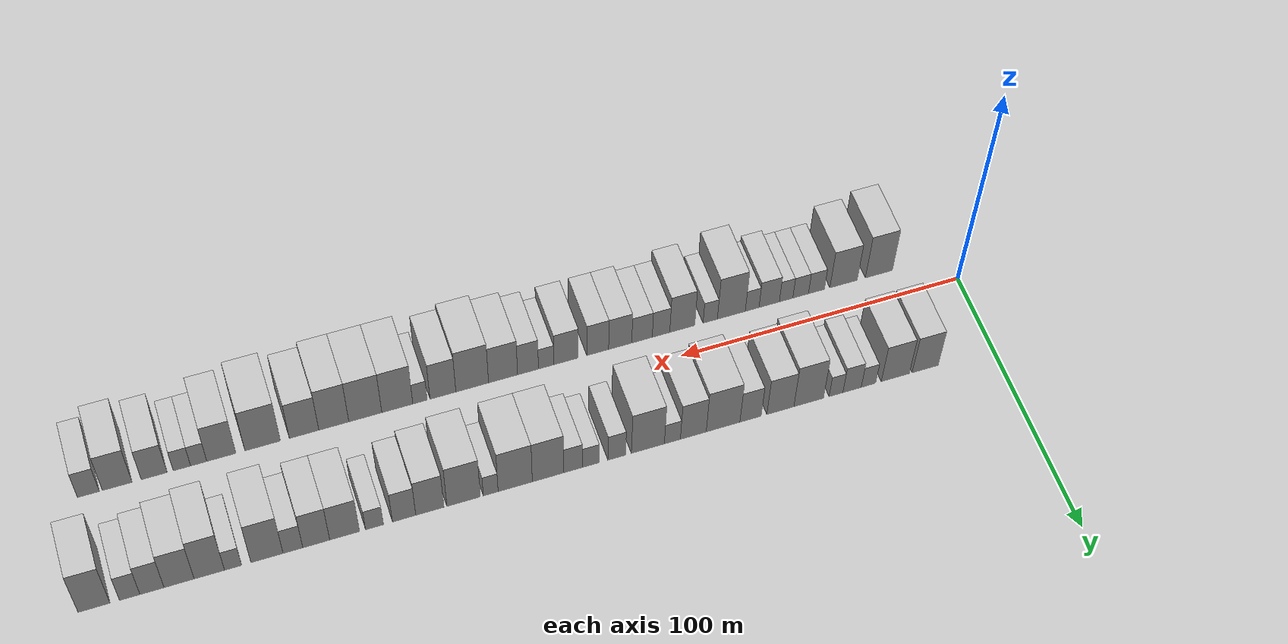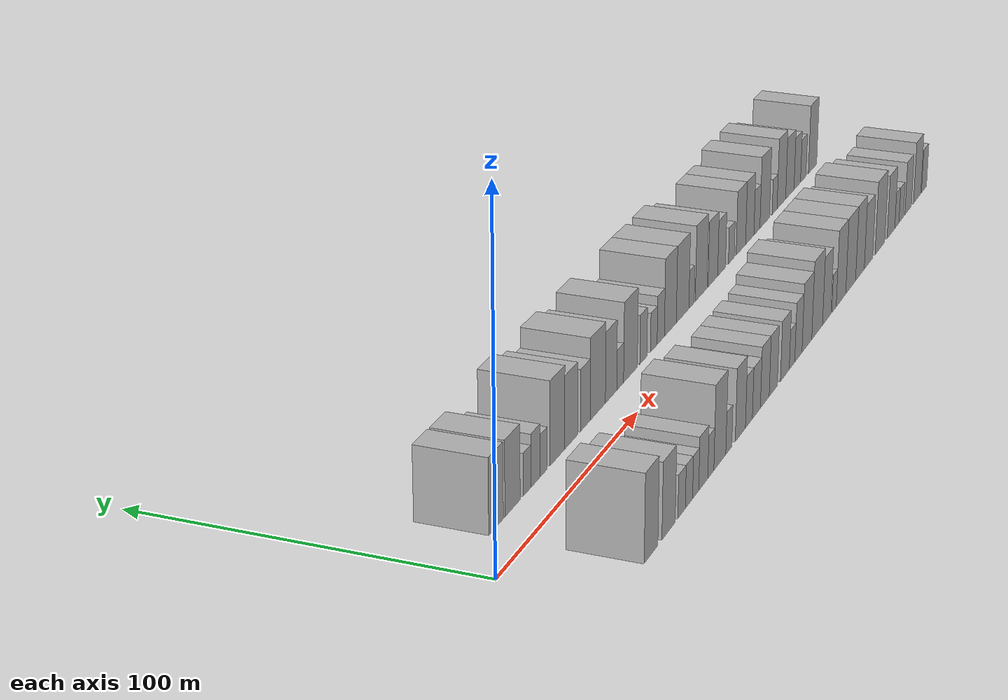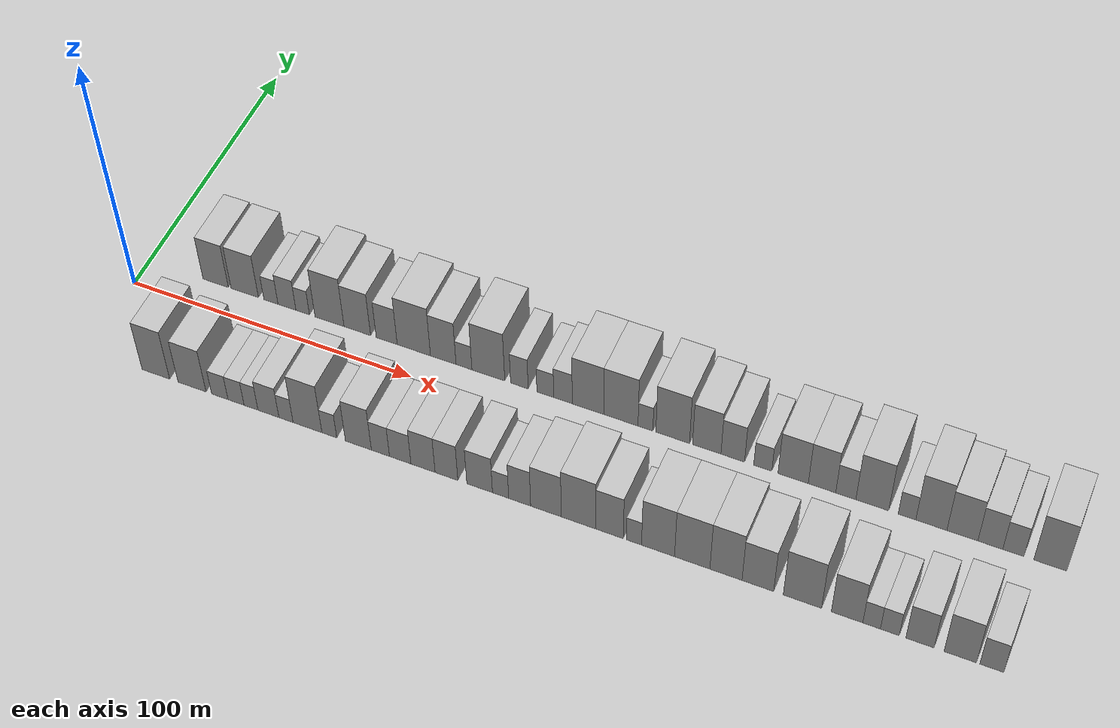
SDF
<sdf version="1.6">
 <world name="default">
  <scene>
   <sky><clouds><speed>12</speed></clouds></sky>
   <ambient>0.4 0.4 0.4 1</ambient>
   <background>0.7 0.7 0.7 1</background>
   <shadows>1</shadows>
  </scene>
  <gravity>0 0 -9.8066</gravity>
  <magnetic_field>6e-06 2.3e-05 -4.2e-05</magnetic_field>
  <physics default="0" name="default_physics" type="ode">
   <ode>
    <solver>
     <type>quick</type>
     <iters>10</iters>
     <sor>1.0</sor>
     <use_dynamic_moi_rescaling>0</use_dynamic_moi_rescaling>
    </solver>
    <constraints>
     <cfm>0</cfm>
     <erp>0.2</erp>
     <contact_max_correcting_vel>100</contact_max_correcting_vel>
     <contact_surface_layer>0.001</contact_surface_layer>
    </constraints>
   </ode>
   <max_step_size>0.004</max_step_size>
   <real_time_factor>1</real_time_factor>
   <real_time_update_rate>250</real_time_update_rate>
  </physics>
  <light name="sun" type="directional">
   <pose>0 0 10 0 0 0</pose>
   <diffuse>0.8 0.8 0.8 1</diffuse>
   <specular>0.2 0.2 0.2 1</specular>
   <attenuation>
    <range>1000</range>
    <constant>0.9</constant>
    <linear>0.01</linear>
    <quadratic>0.001</quadratic>
   </attenuation>
   <direction>-0.5 0.1 -0.9</direction>
  </light>
  <model name="building_1">
   <static>1</static>
   <pose>24.6834 20.0000 0 0.000000 0.000000 1.570796</pose>
   <link name="link">
    <pose>0 0 10.50 0 0 0</pose>
    <collision name="collision"><geometry><box><size>20.0000 9.3668 21.0000</size></box></geometry></collision>
    <visual name="visual">
     <cast_shadows>0</cast_shadows>
     <geometry><box><size>20.0000 9.3668 21.0000</size></box></geometry>
     <material>
      <script>
       <uri>model://HANNAS_wall/materials/scripts</uri>
       <uri>model://HANNAS_wall/materials/textures</uri>
       <name>vrc/HANNAS_wall</name>
      </script>
     </material>
    </visual>
   </link>
  </model>
  <model name="building_2">
   <static>1</static>
   <pose>35.3966 20.0000 0 0.000000 0.000000 1.570796</pose>
   <link name="link">
    <pose>0 0 10.50 0 0 0</pose>
    <collision name="collision"><geometry><box><size>20.0000 10.0596 21.0000</size></box></geometry></collision>
    <visual name="visual">
     <cast_shadows>0</cast_shadows>
     <geometry><box><size>20.0000 10.0596 21.0000</size></box></geometry>
     <material>
      <script>
       <uri>model://HANNAS_wall/materials/scripts</uri>
       <uri>model://HANNAS_wall/materials/textures</uri>
       <name>vrc/HANNAS_wall</name>
      </script>
     </material>
    </visual>
   </link>
  </model>
  <model name="building_3">
   <static>1</static>
   <pose>45.0067 20.0000 0 0.000000 0.000000 1.570796</pose>
   <link name="link">
    <pose>0 0 6.00 0 0 0</pose>
    <collision name="collision"><geometry><box><size>20.0000 5.1606 12.0000</size></box></geometry></collision>
    <visual name="visual">
     <cast_shadows>0</cast_shadows>
     <geometry><box><size>20.0000 5.1606 12.0000</size></box></geometry>
     <material>
      <script>
       <uri>model://HANNAS_wall/materials/scripts</uri>
       <uri>model://HANNAS_wall/materials/textures</uri>
       <name>vrc/HANNAS_wall</name>
      </script>
     </material>
    </visual>
   </link>
  </model>
  <model name="building_4">
   <static>1</static>
   <pose>50.8399 20.0000 0 0.000000 0.000000 1.570796</pose>
   <link name="link">
    <pose>0 0 7.50 0 0 0</pose>
    <collision name="collision"><geometry><box><size>20.0000 6.5058 15.0000</size></box></geometry></collision>
    <visual name="visual">
     <cast_shadows>0</cast_shadows>
     <geometry><box><size>20.0000 6.5058 15.0000</size></box></geometry>
     <material>
      <script>
       <uri>model://HANNAS_wall/materials/scripts</uri>
       <uri>model://HANNAS_wall/materials/textures</uri>
       <name>vrc/HANNAS_wall</name>
      </script>
     </material>
    </visual>
   </link>
  </model>
  <model name="building_5">
   <static>1</static>
   <pose>56.5480 20.0000 0 0.000000 0.000000 1.570796</pose>
   <link name="link">
    <pose>0 0 6.00 0 0 0</pose>
    <collision name="collision"><geometry><box><size>20.0000 4.9104 12.0000</size></box></geometry></collision>
    <visual name="visual">
     <cast_shadows>0</cast_shadows>
     <geometry><box><size>20.0000 4.9104 12.0000</size></box></geometry>
     <material>
      <script>
       <uri>model://HANNAS_wall/materials/scripts</uri>
       <uri>model://HANNAS_wall/materials/textures</uri>
       <name>vrc/HANNAS_wall</name>
      </script>
     </material>
    </visual>
   </link>
  </model>
  <model name="building_6">
   <static>1</static>
   <pose>66.2332 20.0000 0 0.000000 0.000000 1.570796</pose>
   <link name="link">
    <pose>0 0 12.00 0 0 0</pose>
    <collision name="collision"><geometry><box><size>20.0000 10.4600 24.0000</size></box></geometry></collision>
    <visual name="visual">
     <cast_shadows>0</cast_shadows>
     <geometry><box><size>20.0000 10.4600 24.0000</size></box></geometry>
     <material>
      <script>
       <uri>model://HANNAS_wall/materials/scripts</uri>
       <uri>model://HANNAS_wall/materials/textures</uri>
       <name>vrc/HANNAS_wall</name>
      </script>
     </material>
    </visual>
   </link>
  </model>
  <model name="building_7">
   <static>1</static>
   <pose>76.2129 20.0000 0 0.000000 0.000000 1.570796</pose>
   <link name="link">
    <pose>0 0 10.50 0 0 0</pose>
    <collision name="collision"><geometry><box><size>20.0000 9.4994 21.0000</size></box></geometry></collision>
    <visual name="visual">
     <cast_shadows>0</cast_shadows>
     <geometry><box><size>20.0000 9.4994 21.0000</size></box></geometry>
     <material>
      <script>
       <uri>model://HANNAS_wall/materials/scripts</uri>
       <uri>model://HANNAS_wall/materials/textures</uri>
       <name>vrc/HANNAS_wall</name>
      </script>
     </material>
    </visual>
   </link>
  </model>
  <model name="building_8">
   <static>1</static>
   <pose>86.6839 20.0000 0 0.000000 0.000000 1.570796</pose>
   <link name="link">
    <pose>0 0 9.00 0 0 0</pose>
    <collision name="collision"><geometry><box><size>20.0000 7.4425 18.0000</size></box></geometry></collision>
    <visual name="visual">
     <cast_shadows>0</cast_shadows>
     <geometry><box><size>20.0000 7.4425 18.0000</size></box></geometry>
     <material>
      <script>
       <uri>model://HANNAS_wall/materials/scripts</uri>
       <uri>model://HANNAS_wall/materials/textures</uri>
       <name>vrc/HANNAS_wall</name>
      </script>
     </material>
    </visual>
   </link>
  </model>
  <model name="building_9">
   <static>1</static>
   <pose>96.2823 20.0000 0 0.000000 0.000000 1.570796</pose>
   <link name="link">
    <pose>0 0 12.00 0 0 0</pose>
    <collision name="collision"><geometry><box><size>20.0000 11.7544 24.0000</size></box></geometry></collision>
    <visual name="visual">
     <cast_shadows>0</cast_shadows>
     <geometry><box><size>20.0000 11.7544 24.0000</size></box></geometry>
     <material>
      <script>
       <uri>model://HANNAS_wall/materials/scripts</uri>
       <uri>model://HANNAS_wall/materials/textures</uri>
       <name>vrc/HANNAS_wall</name>
      </script>
     </material>
    </visual>
   </link>
  </model>
  <model name="building_10">
   <static>1</static>
   <pose>106.6417 20.0000 0 0.000000 0.000000 1.570796</pose>
   <link name="link">
    <pose>0 0 10.50 0 0 0</pose>
    <collision name="collision"><geometry><box><size>20.0000 8.9642 21.0000</size></box></geometry></collision>
    <visual name="visual">
     <cast_shadows>0</cast_shadows>
     <geometry><box><size>20.0000 8.9642 21.0000</size></box></geometry>
     <material>
      <script>
       <uri>model://HANNAS_wall/materials/scripts</uri>
       <uri>model://HANNAS_wall/materials/textures</uri>
       <name>vrc/HANNAS_wall</name>
      </script>
     </material>
    </visual>
   </link>
  </model>
  <model name="building_11">
   <static>1</static>
   <pose>113.8930 20.0000 0 0.000000 0.000000 1.570796</pose>
   <link name="link">
    <pose>0 0 6.00 0 0 0</pose>
    <collision name="collision"><geometry><box><size>20.0000 5.5385 12.0000</size></box></geometry></collision>
    <visual name="visual">
     <cast_shadows>0</cast_shadows>
     <geometry><box><size>20.0000 5.5385 12.0000</size></box></geometry>
     <material>
      <script>
       <uri>model://HANNAS_wall/materials/scripts</uri>
       <uri>model://HANNAS_wall/materials/textures</uri>
       <name>vrc/HANNAS_wall</name>
      </script>
     </material>
    </visual>
   </link>
  </model>
  <model name="building_12">
   <static>1</static>
   <pose>122.3514 20.0000 0 0.000000 0.000000 1.570796</pose>
   <link name="link">
    <pose>0 0 12.00 0 0 0</pose>
    <collision name="collision"><geometry><box><size>20.0000 11.3783 24.0000</size></box></geometry></collision>
    <visual name="visual">
     <cast_shadows>0</cast_shadows>
     <geometry><box><size>20.0000 11.3783 24.0000</size></box></geometry>
     <material>
      <script>
       <uri>model://HANNAS_wall/materials/scripts</uri>
       <uri>model://HANNAS_wall/materials/textures</uri>
       <name>vrc/HANNAS_wall</name>
      </script>
     </material>
    </visual>
   </link>
  </model>
  <model name="building_13">
   <static>1</static>
   <pose>133.0637 20.0000 0 0.000000 0.000000 1.570796</pose>
   <link name="link">
    <pose>0 0 7.50 0 0 0</pose>
    <collision name="collision"><geometry><box><size>20.0000 6.0463 15.0000</size></box></geometry></collision>
    <visual name="visual">
     <cast_shadows>0</cast_shadows>
     <geometry><box><size>20.0000 6.0463 15.0000</size></box></geometry>
     <material>
      <script>
       <uri>model://HANNAS_wall/materials/scripts</uri>
       <uri>model://HANNAS_wall/materials/textures</uri>
       <name>vrc/HANNAS_wall</name>
      </script>
     </material>
    </visual>
   </link>
  </model>
  <model name="building_14">
   <static>1</static>
   <pose>141.9620 20.0000 0 0.000000 0.000000 1.570796</pose>
   <link name="link">
    <pose>0 0 6.00 0 0 0</pose>
    <collision name="collision"><geometry><box><size>20.0000 5.7503 12.0000</size></box></geometry></collision>
    <visual name="visual">
     <cast_shadows>0</cast_shadows>
     <geometry><box><size>20.0000 5.7503 12.0000</size></box></geometry>
     <material>
      <script>
       <uri>model://HANNAS_wall/materials/scripts</uri>
       <uri>model://HANNAS_wall/materials/textures</uri>
       <name>vrc/HANNAS_wall</name>
      </script>
     </material>
    </visual>
   </link>
  </model>
  <model name="building_15">
   <static>1</static>
   <pose>148.0059 20.0000 0 0.000000 0.000000 1.570796</pose>
   <link name="link">
    <pose>0 0 7.50 0 0 0</pose>
    <collision name="collision"><geometry><box><size>20.0000 6.3373 15.0000</size></box></geometry></collision>
    <visual name="visual">
     <cast_shadows>0</cast_shadows>
     <geometry><box><size>20.0000 6.3373 15.0000</size></box></geometry>
     <material>
      <script>
       <uri>model://HANNAS_wall/materials/scripts</uri>
       <uri>model://HANNAS_wall/materials/textures</uri>
       <name>vrc/HANNAS_wall</name>
      </script>
     </material>
    </visual>
   </link>
  </model>
  <model name="building_16">
   <static>1</static>
   <pose>156.4968 20.0000 0 0.000000 0.000000 1.570796</pose>
   <link name="link">
    <pose>0 0 12.00 0 0 0</pose>
    <collision name="collision"><geometry><box><size>20.0000 10.6446 24.0000</size></box></geometry></collision>
    <visual name="visual">
     <cast_shadows>0</cast_shadows>
     <geometry><box><size>20.0000 10.6446 24.0000</size></box></geometry>
     <material>
      <script>
       <uri>model://HANNAS_wall/materials/scripts</uri>
       <uri>model://HANNAS_wall/materials/textures</uri>
       <name>vrc/HANNAS_wall</name>
      </script>
     </material>
    </visual>
   </link>
  </model>
  <model name="building_17">
   <static>1</static>
   <pose>167.5923 20.0000 0 0.000000 0.000000 1.570796</pose>
   <link name="link">
    <pose>0 0 12.00 0 0 0</pose>
    <collision name="collision"><geometry><box><size>20.0000 11.5463 24.0000</size></box></geometry></collision>
    <visual name="visual">
     <cast_shadows>0</cast_shadows>
     <geometry><box><size>20.0000 11.5463 24.0000</size></box></geometry>
     <material>
      <script>
       <uri>model://HANNAS_wall/materials/scripts</uri>
       <uri>model://HANNAS_wall/materials/textures</uri>
       <name>vrc/HANNAS_wall</name>
      </script>
     </material>
    </visual>
   </link>
  </model>
  <model name="building_18">
   <static>1</static>
   <pose>175.8534 20.0000 0 0.000000 0.000000 1.570796</pose>
   <link name="link">
    <pose>0 0 6.00 0 0 0</pose>
    <collision name="collision"><geometry><box><size>20.0000 4.9759 12.0000</size></box></geometry></collision>
    <visual name="visual">
     <cast_shadows>0</cast_shadows>
     <geometry><box><size>20.0000 4.9759 12.0000</size></box></geometry>
     <material>
      <script>
       <uri>model://HANNAS_wall/materials/scripts</uri>
       <uri>model://HANNAS_wall/materials/textures</uri>
       <name>vrc/HANNAS_wall</name>
      </script>
     </material>
    </visual>
   </link>
  </model>
  <model name="building_19">
   <static>1</static>
   <pose>184.9343 20.0000 0 0.000000 0.000000 1.570796</pose>
   <link name="link">
    <pose>0 0 12.00 0 0 0</pose>
    <collision name="collision"><geometry><box><size>20.0000 11.1859 24.0000</size></box></geometry></collision>
    <visual name="visual">
     <cast_shadows>0</cast_shadows>
     <geometry><box><size>20.0000 11.1859 24.0000</size></box></geometry>
     <material>
      <script>
       <uri>model://HANNAS_wall/materials/scripts</uri>
       <uri>model://HANNAS_wall/materials/textures</uri>
       <name>vrc/HANNAS_wall</name>
      </script>
     </material>
    </visual>
   </link>
  </model>
  <model name="building_20">
   <static>1</static>
   <pose>196.2174 20.0000 0 0.000000 0.000000 1.570796</pose>
   <link name="link">
    <pose>0 0 10.50 0 0 0</pose>
    <collision name="collision"><geometry><box><size>20.0000 9.3804 21.0000</size></box></geometry></collision>
    <visual name="visual">
     <cast_shadows>0</cast_shadows>
     <geometry><box><size>20.0000 9.3804 21.0000</size></box></geometry>
     <material>
      <script>
       <uri>model://HANNAS_wall/materials/scripts</uri>
       <uri>model://HANNAS_wall/materials/textures</uri>
       <name>vrc/HANNAS_wall</name>
      </script>
     </material>
    </visual>
   </link>
  </model>
  <model name="building_21">
   <static>1</static>
   <pose>204.7751 20.0000 0 0.000000 0.000000 1.570796</pose>
   <link name="link">
    <pose>0 0 9.00 0 0 0</pose>
    <collision name="collision"><geometry><box><size>20.0000 7.7349 18.0000</size></box></geometry></collision>
    <visual name="visual">
     <cast_shadows>0</cast_shadows>
     <geometry><box><size>20.0000 7.7349 18.0000</size></box></geometry>
     <material>
      <script>
       <uri>model://HANNAS_wall/materials/scripts</uri>
       <uri>model://HANNAS_wall/materials/textures</uri>
       <name>vrc/HANNAS_wall</name>
      </script>
     </material>
    </visual>
   </link>
  </model>
  <model name="building_22">
   <static>1</static>
   <pose>214.5912 20.0000 0 0.000000 0.000000 1.570796</pose>
   <link name="link">
    <pose>0 0 6.00 0 0 0</pose>
    <collision name="collision"><geometry><box><size>20.0000 5.8975 12.0000</size></box></geometry></collision>
    <visual name="visual">
     <cast_shadows>0</cast_shadows>
     <geometry><box><size>20.0000 5.8975 12.0000</size></box></geometry>
     <material>
      <script>
       <uri>model://HANNAS_wall/materials/scripts</uri>
       <uri>model://HANNAS_wall/materials/textures</uri>
       <name>vrc/HANNAS_wall</name>
      </script>
     </material>
    </visual>
   </link>
  </model>
  <model name="building_23">
   <static>1</static>
   <pose>224.4419 20.0000 0 0.000000 0.000000 1.570796</pose>
   <link name="link">
    <pose>0 0 10.50 0 0 0</pose>
    <collision name="collision"><geometry><box><size>20.0000 9.8039 21.0000</size></box></geometry></collision>
    <visual name="visual">
     <cast_shadows>0</cast_shadows>
     <geometry><box><size>20.0000 9.8039 21.0000</size></box></geometry>
     <material>
      <script>
       <uri>model://HANNAS_wall/materials/scripts</uri>
       <uri>model://HANNAS_wall/materials/textures</uri>
       <name>vrc/HANNAS_wall</name>
      </script>
     </material>
    </visual>
   </link>
  </model>
  <model name="building_24">
   <static>1</static>
   <pose>233.7490 20.0000 0 0.000000 0.000000 1.570796</pose>
   <link name="link">
    <pose>0 0 10.50 0 0 0</pose>
    <collision name="collision"><geometry><box><size>20.0000 8.8103 21.0000</size></box></geometry></collision>
    <visual name="visual">
     <cast_shadows>0</cast_shadows>
     <geometry><box><size>20.0000 8.8103 21.0000</size></box></geometry>
     <material>
      <script>
       <uri>model://HANNAS_wall/materials/scripts</uri>
       <uri>model://HANNAS_wall/materials/textures</uri>
       <name>vrc/HANNAS_wall</name>
      </script>
     </material>
    </visual>
   </link>
  </model>
  <model name="building_25">
   <static>1</static>
   <pose>241.3754 20.0000 0 0.000000 0.000000 1.570796</pose>
   <link name="link">
    <pose>0 0 7.50 0 0 0</pose>
    <collision name="collision"><geometry><box><size>20.0000 6.4426 15.0000</size></box></geometry></collision>
    <visual name="visual">
     <cast_shadows>0</cast_shadows>
     <geometry><box><size>20.0000 6.4426 15.0000</size></box></geometry>
     <material>
      <script>
       <uri>model://HANNAS_wall/materials/scripts</uri>
       <uri>model://HANNAS_wall/materials/textures</uri>
       <name>vrc/HANNAS_wall</name>
      </script>
     </material>
    </visual>
   </link>
  </model>
  <model name="building_26">
   <static>1</static>
   <pose>249.8242 20.0000 0 0.000000 0.000000 1.570796</pose>
   <link name="link">
    <pose>0 0 12.00 0 0 0</pose>
    <collision name="collision"><geometry><box><size>20.0000 10.4550 24.0000</size></box></geometry></collision>
    <visual name="visual">
     <cast_shadows>0</cast_shadows>
     <geometry><box><size>20.0000 10.4550 24.0000</size></box></geometry>
     <material>
      <script>
       <uri>model://HANNAS_wall/materials/scripts</uri>
       <uri>model://HANNAS_wall/materials/textures</uri>
       <name>vrc/HANNAS_wall</name>
      </script>
     </material>
    </visual>
   </link>
  </model>
  <model name="building_27">
   <static>1</static>
   <pose>260.8251 20.0000 0 0.000000 0.000000 1.570796</pose>
   <link name="link">
    <pose>0 0 6.00 0 0 0</pose>
    <collision name="collision"><geometry><box><size>20.0000 5.5468 12.0000</size></box></geometry></collision>
    <visual name="visual">
     <cast_shadows>0</cast_shadows>
     <geometry><box><size>20.0000 5.5468 12.0000</size></box></geometry>
     <material>
      <script>
       <uri>model://HANNAS_wall/materials/scripts</uri>
       <uri>model://HANNAS_wall/materials/textures</uri>
       <name>vrc/HANNAS_wall</name>
      </script>
     </material>
    </visual>
   </link>
  </model>
  <model name="building_28">
   <static>1</static>
   <pose>268.4774 20.0000 0 0.000000 0.000000 1.570796</pose>
   <link name="link">
    <pose>0 0 12.00 0 0 0</pose>
    <collision name="collision"><geometry><box><size>20.0000 9.7577 24.0000</size></box></geometry></collision>
    <visual name="visual">
     <cast_shadows>0</cast_shadows>
     <geometry><box><size>20.0000 9.7577 24.0000</size></box></geometry>
     <material>
      <script>
       <uri>model://HANNAS_wall/materials/scripts</uri>
       <uri>model://HANNAS_wall/materials/textures</uri>
       <name>vrc/HANNAS_wall</name>
      </script>
     </material>
    </visual>
   </link>
  </model>
  <model name="building_29">
   <static>1</static>
   <pose>278.1939 20.0000 0 0.000000 0.000000 1.570796</pose>
   <link name="link">
    <pose>0 0 10.50 0 0 0</pose>
    <collision name="collision"><geometry><box><size>20.0000 9.6753 21.0000</size></box></geometry></collision>
    <visual name="visual">
     <cast_shadows>0</cast_shadows>
     <geometry><box><size>20.0000 9.6753 21.0000</size></box></geometry>
     <material>
      <script>
       <uri>model://HANNAS_wall/materials/scripts</uri>
       <uri>model://HANNAS_wall/materials/textures</uri>
       <name>vrc/HANNAS_wall</name>
      </script>
     </material>
    </visual>
   </link>
  </model>
  <model name="building_30">
   <static>1</static>
   <pose>286.8814 20.0000 0 0.000000 0.000000 1.570796</pose>
   <link name="link">
    <pose>0 0 9.00 0 0 0</pose>
    <collision name="collision"><geometry><box><size>20.0000 7.6998 18.0000</size></box></geometry></collision>
    <visual name="visual">
     <cast_shadows>0</cast_shadows>
     <geometry><box><size>20.0000 7.6998 18.0000</size></box></geometry>
     <material>
      <script>
       <uri>model://HANNAS_wall/materials/scripts</uri>
       <uri>model://HANNAS_wall/materials/textures</uri>
       <name>vrc/HANNAS_wall</name>
      </script>
     </material>
    </visual>
   </link>
  </model>
  <model name="building_31">
   <static>1</static>
   <pose>293.9942 20.0000 0 0.000000 0.000000 1.570796</pose>
   <link name="link">
    <pose>0 0 7.50 0 0 0</pose>
    <collision name="collision"><geometry><box><size>20.0000 6.5258 15.0000</size></box></geometry></collision>
    <visual name="visual">
     <cast_shadows>0</cast_shadows>
     <geometry><box><size>20.0000 6.5258 15.0000</size></box></geometry>
     <material>
      <script>
       <uri>model://HANNAS_wall/materials/scripts</uri>
       <uri>model://HANNAS_wall/materials/textures</uri>
       <name>vrc/HANNAS_wall</name>
      </script>
     </material>
    </visual>
   </link>
  </model>
  <model name="building_32">
   <static>1</static>
   <pose>305.3265 20.0000 0 0.000000 0.000000 1.570796</pose>
   <link name="link">
    <pose>0 0 12.00 0 0 0</pose>
    <collision name="collision"><geometry><box><size>20.0000 10.1388 24.0000</size></box></geometry></collision>
    <visual name="visual">
     <cast_shadows>0</cast_shadows>
     <geometry><box><size>20.0000 10.1388 24.0000</size></box></geometry>
     <material>
      <script>
       <uri>model://HANNAS_wall/materials/scripts</uri>
       <uri>model://HANNAS_wall/materials/textures</uri>
       <name>vrc/HANNAS_wall</name>
      </script>
     </material>
    </visual>
   </link>
  </model>
  <model name="building_33">
   <static>1</static>
   <pose>24.9753 -20.0000 0 0.000000 0.000000 1.570796</pose>
   <link name="link">
    <pose>0 0 12.00 0 0 0</pose>
    <collision name="collision"><geometry><box><size>20.0000 9.9506 24.0000</size></box></geometry></collision>
    <visual name="visual">
     <cast_shadows>0</cast_shadows>
     <geometry><box><size>20.0000 9.9506 24.0000</size></box></geometry>
     <material>
      <script>
       <uri>model://HANNAS_wall/materials/scripts</uri>
       <uri>model://HANNAS_wall/materials/textures</uri>
       <name>vrc/HANNAS_wall</name>
      </script>
     </material>
    </visual>
   </link>
  </model>
  <model name="building_34">
   <static>1</static>
   <pose>37.9530 -20.0000 0 0.000000 0.000000 1.570796</pose>
   <link name="link">
    <pose>0 0 10.50 0 0 0</pose>
    <collision name="collision"><geometry><box><size>20.0000 10.0048 21.0000</size></box></geometry></collision>
    <visual name="visual">
     <cast_shadows>0</cast_shadows>
     <geometry><box><size>20.0000 10.0048 21.0000</size></box></geometry>
     <material>
      <script>
       <uri>model://HANNAS_wall/materials/scripts</uri>
       <uri>model://HANNAS_wall/materials/textures</uri>
       <name>vrc/HANNAS_wall</name>
      </script>
     </material>
    </visual>
   </link>
  </model>
  <model name="building_35">
   <static>1</static>
   <pose>47.8669 -20.0000 0 0.000000 0.000000 1.570796</pose>
   <link name="link">
    <pose>0 0 6.00 0 0 0</pose>
    <collision name="collision"><geometry><box><size>20.0000 5.8230 12.0000</size></box></geometry></collision>
    <visual name="visual">
     <cast_shadows>0</cast_shadows>
     <geometry><box><size>20.0000 5.8230 12.0000</size></box></geometry>
     <material>
      <script>
       <uri>model://HANNAS_wall/materials/scripts</uri>
       <uri>model://HANNAS_wall/materials/textures</uri>
       <name>vrc/HANNAS_wall</name>
      </script>
     </material>
    </visual>
   </link>
  </model>
  <model name="building_36">
   <static>1</static>
   <pose>53.6267 -20.0000 0 0.000000 0.000000 1.570796</pose>
   <link name="link">
    <pose>0 0 6.00 0 0 0</pose>
    <collision name="collision"><geometry><box><size>20.0000 5.6967 12.0000</size></box></geometry></collision>
    <visual name="visual">
     <cast_shadows>0</cast_shadows>
     <geometry><box><size>20.0000 5.6967 12.0000</size></box></geometry>
     <material>
      <script>
       <uri>model://HANNAS_wall/materials/scripts</uri>
       <uri>model://HANNAS_wall/materials/textures</uri>
       <name>vrc/HANNAS_wall</name>
      </script>
     </material>
    </visual>
   </link>
  </model>
  <model name="building_37">
   <static>1</static>
   <pose>58.9188 -20.0000 0 0.000000 0.000000 1.570796</pose>
   <link name="link">
    <pose>0 0 6.00 0 0 0</pose>
    <collision name="collision"><geometry><box><size>20.0000 4.8874 12.0000</size></box></geometry></collision>
    <visual name="visual">
     <cast_shadows>0</cast_shadows>
     <geometry><box><size>20.0000 4.8874 12.0000</size></box></geometry>
     <material>
      <script>
       <uri>model://HANNAS_wall/materials/scripts</uri>
       <uri>model://HANNAS_wall/materials/textures</uri>
       <name>vrc/HANNAS_wall</name>
      </script>
     </material>
    </visual>
   </link>
  </model>
  <model name="building_38">
   <static>1</static>
   <pose>65.0419 -20.0000 0 0.000000 0.000000 1.570796</pose>
   <link name="link">
    <pose>0 0 7.50 0 0 0</pose>
    <collision name="collision"><geometry><box><size>20.0000 7.3588 15.0000</size></box></geometry></collision>
    <visual name="visual">
     <cast_shadows>0</cast_shadows>
     <geometry><box><size>20.0000 7.3588 15.0000</size></box></geometry>
     <material>
      <script>
       <uri>model://HANNAS_wall/materials/scripts</uri>
       <uri>model://HANNAS_wall/materials/textures</uri>
       <name>vrc/HANNAS_wall</name>
      </script>
     </material>
    </visual>
   </link>
  </model>
  <model name="building_39">
   <static>1</static>
   <pose>71.2017 -20.0000 0 0.000000 0.000000 1.570796</pose>
   <link name="link">
    <pose>0 0 6.00 0 0 0</pose>
    <collision name="collision"><geometry><box><size>20.0000 4.9608 12.0000</size></box></geometry></collision>
    <visual name="visual">
     <cast_shadows>0</cast_shadows>
     <geometry><box><size>20.0000 4.9608 12.0000</size></box></geometry>
     <material>
      <script>
       <uri>model://HANNAS_wall/materials/scripts</uri>
       <uri>model://HANNAS_wall/materials/textures</uri>
       <name>vrc/HANNAS_wall</name>
      </script>
     </material>
    </visual>
   </link>
  </model>
  <model name="building_40">
   <static>1</static>
   <pose>78.7000 -20.0000 0 0.000000 0.000000 1.570796</pose>
   <link name="link">
    <pose>0 0 12.00 0 0 0</pose>
    <collision name="collision"><geometry><box><size>20.0000 10.0357 24.0000</size></box></geometry></collision>
    <visual name="visual">
     <cast_shadows>0</cast_shadows>
     <geometry><box><size>20.0000 10.0357 24.0000</size></box></geometry>
     <material>
      <script>
       <uri>model://HANNAS_wall/materials/scripts</uri>
       <uri>model://HANNAS_wall/materials/textures</uri>
       <name>vrc/HANNAS_wall</name>
      </script>
     </material>
    </visual>
   </link>
  </model>
  <model name="building_41">
   <static>1</static>
   <pose>86.2831 -20.0000 0 0.000000 0.000000 1.570796</pose>
   <link name="link">
    <pose>0 0 6.00 0 0 0</pose>
    <collision name="collision"><geometry><box><size>20.0000 5.1305 12.0000</size></box></geometry></collision>
    <visual name="visual">
     <cast_shadows>0</cast_shadows>
     <geometry><box><size>20.0000 5.1305 12.0000</size></box></geometry>
     <material>
      <script>
       <uri>model://HANNAS_wall/materials/scripts</uri>
       <uri>model://HANNAS_wall/materials/textures</uri>
       <name>vrc/HANNAS_wall</name>
      </script>
     </material>
    </visual>
   </link>
  </model>
  <model name="building_42">
   <static>1</static>
   <pose>96.3100 -20.0000 0 0.000000 0.000000 1.570796</pose>
   <link name="link">
    <pose>0 0 10.50 0 0 0</pose>
    <collision name="collision"><geometry><box><size>20.0000 8.9233 21.0000</size></box></geometry></collision>
    <visual name="visual">
     <cast_shadows>0</cast_shadows>
     <geometry><box><size>20.0000 8.9233 21.0000</size></box></geometry>
     <material>
      <script>
       <uri>model://HANNAS_wall/materials/scripts</uri>
       <uri>model://HANNAS_wall/materials/textures</uri>
       <name>vrc/HANNAS_wall</name>
      </script>
     </material>
    </visual>
   </link>
  </model>
  <model name="building_43">
   <static>1</static>
   <pose>103.8751 -20.0000 0 0.000000 0.000000 1.570796</pose>
   <link name="link">
    <pose>0 0 7.50 0 0 0</pose>
    <collision name="collision"><geometry><box><size>20.0000 6.2070 15.0000</size></box></geometry></collision>
    <visual name="visual">
     <cast_shadows>0</cast_shadows>
     <geometry><box><size>20.0000 6.2070 15.0000</size></box></geometry>
     <material>
      <script>
       <uri>model://HANNAS_wall/materials/scripts</uri>
       <uri>model://HANNAS_wall/materials/textures</uri>
       <name>vrc/HANNAS_wall</name>
      </script>
     </material>
    </visual>
   </link>
  </model>
  <model name="building_44">
   <static>1</static>
   <pose>110.6280 -20.0000 0 0.000000 0.000000 1.570796</pose>
   <link name="link">
    <pose>0 0 7.50 0 0 0</pose>
    <collision name="collision"><geometry><box><size>20.0000 7.2988 15.0000</size></box></geometry></collision>
    <visual name="visual">
     <cast_shadows>0</cast_shadows>
     <geometry><box><size>20.0000 7.2988 15.0000</size></box></geometry>
     <material>
      <script>
       <uri>model://HANNAS_wall/materials/scripts</uri>
       <uri>model://HANNAS_wall/materials/textures</uri>
       <name>vrc/HANNAS_wall</name>
      </script>
     </material>
    </visual>
   </link>
  </model>
  <model name="building_45">
   <static>1</static>
   <pose>118.3659 -20.0000 0 0.000000 0.000000 1.570796</pose>
   <link name="link">
    <pose>0 0 9.00 0 0 0</pose>
    <collision name="collision"><geometry><box><size>20.0000 8.1769 18.0000</size></box></geometry></collision>
    <visual name="visual">
     <cast_shadows>0</cast_shadows>
     <geometry><box><size>20.0000 8.1769 18.0000</size></box></geometry>
     <material>
      <script>
       <uri>model://HANNAS_wall/materials/scripts</uri>
       <uri>model://HANNAS_wall/materials/textures</uri>
       <name>vrc/HANNAS_wall</name>
      </script>
     </material>
    </visual>
   </link>
  </model>
  <model name="building_46">
   <static>1</static>
   <pose>126.2881 -20.0000 0 0.000000 0.000000 1.570796</pose>
   <link name="link">
    <pose>0 0 9.00 0 0 0</pose>
    <collision name="collision"><geometry><box><size>20.0000 7.6676 18.0000</size></box></geometry></collision>
    <visual name="visual">
     <cast_shadows>0</cast_shadows>
     <geometry><box><size>20.0000 7.6676 18.0000</size></box></geometry>
     <material>
      <script>
       <uri>model://HANNAS_wall/materials/scripts</uri>
       <uri>model://HANNAS_wall/materials/textures</uri>
       <name>vrc/HANNAS_wall</name>
      </script>
     </material>
    </visual>
   </link>
  </model>
  <model name="building_47">
   <static>1</static>
   <pose>137.4050 -20.0000 0 0.000000 0.000000 1.570796</pose>
   <link name="link">
    <pose>0 0 9.00 0 0 0</pose>
    <collision name="collision"><geometry><box><size>20.0000 8.5662 18.0000</size></box></geometry></collision>
    <visual name="visual">
     <cast_shadows>0</cast_shadows>
     <geometry><box><size>20.0000 8.5662 18.0000</size></box></geometry>
     <material>
      <script>
       <uri>model://HANNAS_wall/materials/scripts</uri>
       <uri>model://HANNAS_wall/materials/textures</uri>
       <name>vrc/HANNAS_wall</name>
      </script>
     </material>
    </visual>
   </link>
  </model>
  <model name="building_48">
   <static>1</static>
   <pose>144.3906 -20.0000 0 0.000000 0.000000 1.570796</pose>
   <link name="link">
    <pose>0 0 6.00 0 0 0</pose>
    <collision name="collision"><geometry><box><size>20.0000 5.4049 12.0000</size></box></geometry></collision>
    <visual name="visual">
     <cast_shadows>0</cast_shadows>
     <geometry><box><size>20.0000 5.4049 12.0000</size></box></geometry>
     <material>
      <script>
       <uri>model://HANNAS_wall/materials/scripts</uri>
       <uri>model://HANNAS_wall/materials/textures</uri>
       <name>vrc/HANNAS_wall</name>
      </script>
     </material>
    </visual>
   </link>
  </model>
  <model name="building_49">
   <static>1</static>
   <pose>150.7303 -20.0000 0 0.000000 0.000000 1.570796</pose>
   <link name="link">
    <pose>0 0 9.00 0 0 0</pose>
    <collision name="collision"><geometry><box><size>20.0000 7.2745 18.0000</size></box></geometry></collision>
    <visual name="visual">
     <cast_shadows>0</cast_shadows>
     <geometry><box><size>20.0000 7.2745 18.0000</size></box></geometry>
     <material>
      <script>
       <uri>model://HANNAS_wall/materials/scripts</uri>
       <uri>model://HANNAS_wall/materials/textures</uri>
       <name>vrc/HANNAS_wall</name>
      </script>
     </material>
    </visual>
   </link>
  </model>
  <model name="building_50">
   <static>1</static>
   <pose>159.4050 -20.0000 0 0.000000 0.000000 1.570796</pose>
   <link name="link">
    <pose>0 0 10.50 0 0 0</pose>
    <collision name="collision"><geometry><box><size>20.0000 10.0749 21.0000</size></box></geometry></collision>
    <visual name="visual">
     <cast_shadows>0</cast_shadows>
     <geometry><box><size>20.0000 10.0749 21.0000</size></box></geometry>
     <material>
      <script>
       <uri>model://HANNAS_wall/materials/scripts</uri>
       <uri>model://HANNAS_wall/materials/textures</uri>
       <name>vrc/HANNAS_wall</name>
      </script>
     </material>
    </visual>
   </link>
  </model>
  <model name="building_51">
   <static>1</static>
   <pose>170.0865 -20.0000 0 0.000000 0.000000 1.570796</pose>
   <link name="link">
    <pose>0 0 12.00 0 0 0</pose>
    <collision name="collision"><geometry><box><size>20.0000 11.2882 24.0000</size></box></geometry></collision>
    <visual name="visual">
     <cast_shadows>0</cast_shadows>
     <geometry><box><size>20.0000 11.2882 24.0000</size></box></geometry>
     <material>
      <script>
       <uri>model://HANNAS_wall/materials/scripts</uri>
       <uri>model://HANNAS_wall/materials/textures</uri>
       <name>vrc/HANNAS_wall</name>
      </script>
     </material>
    </visual>
   </link>
  </model>
  <model name="building_52">
   <static>1</static>
   <pose>180.1830 -20.0000 0 0.000000 0.000000 1.570796</pose>
   <link name="link">
    <pose>0 0 10.50 0 0 0</pose>
    <collision name="collision"><geometry><box><size>20.0000 8.9048 21.0000</size></box></geometry></collision>
    <visual name="visual">
     <cast_shadows>0</cast_shadows>
     <geometry><box><size>20.0000 8.9048 21.0000</size></box></geometry>
     <material>
      <script>
       <uri>model://HANNAS_wall/materials/scripts</uri>
       <uri>model://HANNAS_wall/materials/textures</uri>
       <name>vrc/HANNAS_wall</name>
      </script>
     </material>
    </visual>
   </link>
  </model>
  <model name="building_53">
   <static>1</static>
   <pose>188.0749 -20.0000 0 0.000000 0.000000 1.570796</pose>
   <link name="link">
    <pose>0 0 6.00 0 0 0</pose>
    <collision name="collision"><geometry><box><size>20.0000 4.8788 12.0000</size></box></geometry></collision>
    <visual name="visual">
     <cast_shadows>0</cast_shadows>
     <geometry><box><size>20.0000 4.8788 12.0000</size></box></geometry>
     <material>
      <script>
       <uri>model://HANNAS_wall/materials/scripts</uri>
       <uri>model://HANNAS_wall/materials/textures</uri>
       <name>vrc/HANNAS_wall</name>
      </script>
     </material>
    </visual>
   </link>
  </model>
  <model name="building_54">
   <static>1</static>
   <pose>195.8124 -20.0000 0 0.000000 0.000000 1.570796</pose>
   <link name="link">
    <pose>0 0 12.00 0 0 0</pose>
    <collision name="collision"><geometry><box><size>20.0000 10.5963 24.0000</size></box></geometry></collision>
    <visual name="visual">
     <cast_shadows>0</cast_shadows>
     <geometry><box><size>20.0000 10.5963 24.0000</size></box></geometry>
     <material>
      <script>
       <uri>model://HANNAS_wall/materials/scripts</uri>
       <uri>model://HANNAS_wall/materials/textures</uri>
       <name>vrc/HANNAS_wall</name>
      </script>
     </material>
    </visual>
   </link>
  </model>
  <model name="building_55">
   <static>1</static>
   <pose>206.7335 -20.0000 0 0.000000 0.000000 1.570796</pose>
   <link name="link">
    <pose>0 0 12.00 0 0 0</pose>
    <collision name="collision"><geometry><box><size>20.0000 11.2457 24.0000</size></box></geometry></collision>
    <visual name="visual">
     <cast_shadows>0</cast_shadows>
     <geometry><box><size>20.0000 11.2457 24.0000</size></box></geometry>
     <material>
      <script>
       <uri>model://HANNAS_wall/materials/scripts</uri>
       <uri>model://HANNAS_wall/materials/textures</uri>
       <name>vrc/HANNAS_wall</name>
      </script>
     </material>
    </visual>
   </link>
  </model>
  <model name="building_56">
   <static>1</static>
   <pose>217.4308 -20.0000 0 0.000000 0.000000 1.570796</pose>
   <link name="link">
    <pose>0 0 12.00 0 0 0</pose>
    <collision name="collision"><geometry><box><size>20.0000 10.1491 24.0000</size></box></geometry></collision>
    <visual name="visual">
     <cast_shadows>0</cast_shadows>
     <geometry><box><size>20.0000 10.1491 24.0000</size></box></geometry>
     <material>
      <script>
       <uri>model://HANNAS_wall/materials/scripts</uri>
       <uri>model://HANNAS_wall/materials/textures</uri>
       <name>vrc/HANNAS_wall</name>
      </script>
     </material>
    </visual>
   </link>
  </model>
  <model name="building_57">
   <static>1</static>
   <pose>227.4705 -20.0000 0 0.000000 0.000000 1.570796</pose>
   <link name="link">
    <pose>0 0 10.50 0 0 0</pose>
    <collision name="collision"><geometry><box><size>20.0000 9.9302 21.0000</size></box></geometry></collision>
    <visual name="visual">
     <cast_shadows>0</cast_shadows>
     <geometry><box><size>20.0000 9.9302 21.0000</size></box></geometry>
     <material>
      <script>
       <uri>model://HANNAS_wall/materials/scripts</uri>
       <uri>model://HANNAS_wall/materials/textures</uri>
       <name>vrc/HANNAS_wall</name>
      </script>
     </material>
    </visual>
   </link>
  </model>
  <model name="building_58">
   <static>1</static>
   <pose>241.3833 -20.0000 0 0.000000 0.000000 1.570796</pose>
   <link name="link">
    <pose>0 0 12.00 0 0 0</pose>
    <collision name="collision"><geometry><box><size>20.0000 11.8955 24.0000</size></box></geometry></collision>
    <visual name="visual">
     <cast_shadows>0</cast_shadows>
     <geometry><box><size>20.0000 11.8955 24.0000</size></box></geometry>
     <material>
      <script>
       <uri>model://HANNAS_wall/materials/scripts</uri>
       <uri>model://HANNAS_wall/materials/textures</uri>
       <name>vrc/HANNAS_wall</name>
      </script>
     </material>
    </visual>
   </link>
  </model>
  <model name="building_59">
   <static>1</static>
   <pose>255.1770 -20.0000 0 0.000000 0.000000 1.570796</pose>
   <link name="link">
    <pose>0 0 10.50 0 0 0</pose>
    <collision name="collision"><geometry><box><size>20.0000 9.6918 21.0000</size></box></geometry></collision>
    <visual name="visual">
     <cast_shadows>0</cast_shadows>
     <geometry><box><size>20.0000 9.6918 21.0000</size></box></geometry>
     <material>
      <script>
       <uri>model://HANNAS_wall/materials/scripts</uri>
       <uri>model://HANNAS_wall/materials/textures</uri>
       <name>vrc/HANNAS_wall</name>
      </script>
     </material>
    </visual>
   </link>
  </model>
  <model name="building_60">
   <static>1</static>
   <pose>262.7102 -20.0000 0 0.000000 0.000000 1.570796</pose>
   <link name="link">
    <pose>0 0 6.00 0 0 0</pose>
    <collision name="collision"><geometry><box><size>20.0000 5.3747 12.0000</size></box></geometry></collision>
    <visual name="visual">
     <cast_shadows>0</cast_shadows>
     <geometry><box><size>20.0000 5.3747 12.0000</size></box></geometry>
     <material>
      <script>
       <uri>model://HANNAS_wall/materials/scripts</uri>
       <uri>model://HANNAS_wall/materials/textures</uri>
       <name>vrc/HANNAS_wall</name>
      </script>
     </material>
    </visual>
   </link>
  </model>
  <model name="building_61">
   <static>1</static>
   <pose>268.2704 -20.0000 0 0.000000 0.000000 1.570796</pose>
   <link name="link">
    <pose>0 0 6.00 0 0 0</pose>
    <collision name="collision"><geometry><box><size>20.0000 5.7456 12.0000</size></box></geometry></collision>
    <visual name="visual">
     <cast_shadows>0</cast_shadows>
     <geometry><box><size>20.0000 5.7456 12.0000</size></box></geometry>
     <material>
      <script>
       <uri>model://HANNAS_wall/materials/scripts</uri>
       <uri>model://HANNAS_wall/materials/textures</uri>
       <name>vrc/HANNAS_wall</name>
      </script>
     </material>
    </visual>
   </link>
  </model>
  <model name="building_62">
   <static>1</static>
   <pose>277.4095 -20.0000 0 0.000000 0.000000 1.570796</pose>
   <link name="link">
    <pose>0 0 9.00 0 0 0</pose>
    <collision name="collision"><geometry><box><size>20.0000 8.5326 18.0000</size></box></geometry></collision>
    <visual name="visual">
     <cast_shadows>0</cast_shadows>
     <geometry><box><size>20.0000 8.5326 18.0000</size></box></geometry>
     <material>
      <script>
       <uri>model://HANNAS_wall/materials/scripts</uri>
       <uri>model://HANNAS_wall/materials/textures</uri>
       <name>vrc/HANNAS_wall</name>
      </script>
     </material>
    </visual>
   </link>
  </model>
  <model name="building_63">
   <static>1</static>
   <pose>289.5439 -20.0000 0 0.000000 0.000000 1.570796</pose>
   <link name="link">
    <pose>0 0 10.50 0 0 0</pose>
    <collision name="collision"><geometry><box><size>20.0000 9.7362 21.0000</size></box></geometry></collision>
    <visual name="visual">
     <cast_shadows>0</cast_shadows>
     <geometry><box><size>20.0000 9.7362 21.0000</size></box></geometry>
     <material>
      <script>
       <uri>model://HANNAS_wall/materials/scripts</uri>
       <uri>model://HANNAS_wall/materials/textures</uri>
       <name>vrc/HANNAS_wall</name>
      </script>
     </material>
    </visual>
   </link>
  </model>
  <model name="building_64">
   <static>1</static>
   <pose>298.9877 -20.0000 0 0.000000 0.000000 1.570796</pose>
   <link name="link">
    <pose>0 0 7.50 0 0 0</pose>
    <collision name="collision"><geometry><box><size>20.0000 7.1514 15.0000</size></box></geometry></collision>
    <visual name="visual">
     <cast_shadows>0</cast_shadows>
     <geometry><box><size>20.0000 7.1514 15.0000</size></box></geometry>
     <material>
      <script>
       <uri>model://HANNAS_wall/materials/scripts</uri>
       <uri>model://HANNAS_wall/materials/textures</uri>
       <name>vrc/HANNAS_wall</name>
      </script>
     </material>
    </visual>
   </link>
  </model>
 </world>
</sdf>
